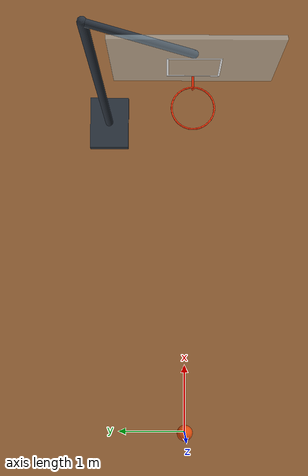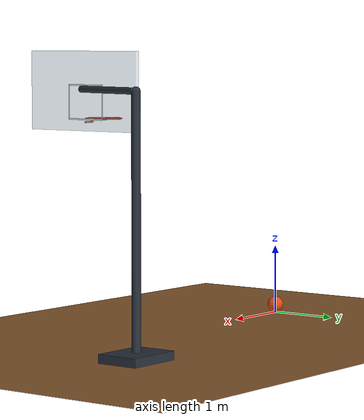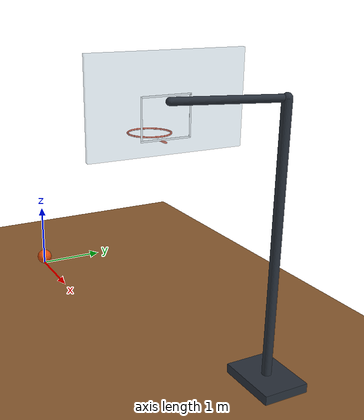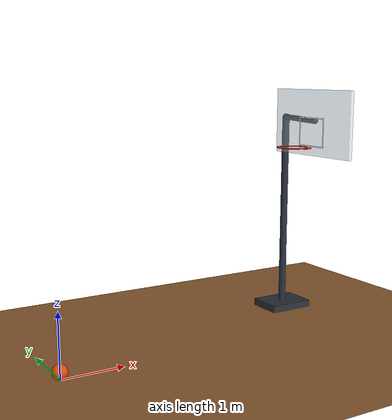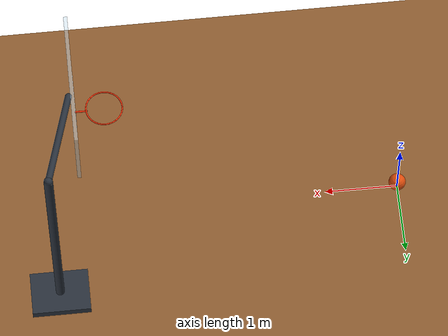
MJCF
<mujoco model="basketball_shot">
  <compiler angle="radian"/>
  <option timestep="0.002" integrator="RK4" gravity="0 0 -9.81"/>

  <statistic center="2.2 0 1.8" extent="5.5"/>

  <visual>
    <headlight ambient="0.35 0.35 0.35" diffuse="0.65 0.65 0.65" specular="0.2 0.2 0.2"/>
    <rgba haze="0.85 0.9 0.95 1"/>
  </visual>

  <asset>
    <material name="court_material" rgba="0.55 0.36 0.19 1" specular="0.15" shininess="0.2"/>
    <material name="ball_material" rgba="0.88 0.30 0.045 1" specular="0.1" shininess="0.1"/>
    <material name="rim_material" rgba="0.95 0.19 0.025 1" specular="0.45" shininess="0.5"/>
    <material name="support_material" rgba="0.16 0.19 0.23 1" specular="0.25" shininess="0.3"/>
    <material name="board_material" rgba="0.78 0.88 0.94 0.45" specular="0.5" shininess="0.7"/>
    <material name="marking_material" rgba="1 1 1 1"/>
  </asset>

  <worldbody>
    <light name="key_light" pos="1 -3 7" dir="0.25 0.25 -1" directional="true" diffuse="0.8 0.8 0.8"/>
    <light name="fill_light" pos="5 4 6" dir="-0.3 -0.4 -1" directional="true" diffuse="0.4 0.4 0.4"/>
    <camera name="overview" pos="2 -8 4.5" xyaxes="1 0 0 0 0.3 0.953939" fovy="45"/>

    <geom name="floor" type="plane" pos="0 0 0" size="10 7 0.1" material="court_material" friction="0.8 0.01 0.001"/>

    <!-- Size-7 basketball: 0.754 m circumference and 0.624 kg mass. -->
    <body name="ball" pos="0 0 0.12">
      <freejoint name="ball_free"/>
      <geom name="ball" type="sphere" size="0.12" mass="0.624" material="ball_material" friction="0.7 0.01 0.001" condim="6"/>
    </body>

    <!-- Rim center is exactly 4 m horizontally from the launch point. -->
    <!-- Capsule centerline radius 0.2381 m; tube radius 0.0095 m. -->
    <body name="hoop" pos="4 0 3.05">
      <geom name="rim_00" type="capsule" fromto="0.238100 0 0 0.233525 0.046451 0" size="0.0095" material="rim_material"/>
      <geom name="rim_01" type="capsule" fromto="0.233525 0.046451 0 0.219976 0.091117 0" size="0.0095" material="rim_material"/>
      <geom name="rim_02" type="capsule" fromto="0.219976 0.091117 0 0.197973 0.132281 0" size="0.0095" material="rim_material"/>
      <geom name="rim_03" type="capsule" fromto="0.197973 0.132281 0 0.168362 0.168362 0" size="0.0095" material="rim_material"/>
      <geom name="rim_04" type="capsule" fromto="0.168362 0.168362 0 0.132281 0.197973 0" size="0.0095" material="rim_material"/>
      <geom name="rim_05" type="capsule" fromto="0.132281 0.197973 0 0.091117 0.219976 0" size="0.0095" material="rim_material"/>
      <geom name="rim_06" type="capsule" fromto="0.091117 0.219976 0 0.046451 0.233525 0" size="0.0095" material="rim_material"/>
      <geom name="rim_07" type="capsule" fromto="0.046451 0.233525 0 0 0.238100 0" size="0.0095" material="rim_material"/>
      <geom name="rim_08" type="capsule" fromto="0 0.238100 0 -0.046451 0.233525 0" size="0.0095" material="rim_material"/>
      <geom name="rim_09" type="capsule" fromto="-0.046451 0.233525 0 -0.091117 0.219976 0" size="0.0095" material="rim_material"/>
      <geom name="rim_10" type="capsule" fromto="-0.091117 0.219976 0 -0.132281 0.197973 0" size="0.0095" material="rim_material"/>
      <geom name="rim_11" type="capsule" fromto="-0.132281 0.197973 0 -0.168362 0.168362 0" size="0.0095" material="rim_material"/>
      <geom name="rim_12" type="capsule" fromto="-0.168362 0.168362 0 -0.197973 0.132281 0" size="0.0095" material="rim_material"/>
      <geom name="rim_13" type="capsule" fromto="-0.197973 0.132281 0 -0.219976 0.091117 0" size="0.0095" material="rim_material"/>
      <geom name="rim_14" type="capsule" fromto="-0.219976 0.091117 0 -0.233525 0.046451 0" size="0.0095" material="rim_material"/>
      <geom name="rim_15" type="capsule" fromto="-0.233525 0.046451 0 -0.238100 0 0" size="0.0095" material="rim_material"/>
      <geom name="rim_16" type="capsule" fromto="-0.238100 0 0 -0.233525 -0.046451 0" size="0.0095" material="rim_material"/>
      <geom name="rim_17" type="capsule" fromto="-0.233525 -0.046451 0 -0.219976 -0.091117 0" size="0.0095" material="rim_material"/>
      <geom name="rim_18" type="capsule" fromto="-0.219976 -0.091117 0 -0.197973 -0.132281 0" size="0.0095" material="rim_material"/>
      <geom name="rim_19" type="capsule" fromto="-0.197973 -0.132281 0 -0.168362 -0.168362 0" size="0.0095" material="rim_material"/>
      <geom name="rim_20" type="capsule" fromto="-0.168362 -0.168362 0 -0.132281 -0.197973 0" size="0.0095" material="rim_material"/>
      <geom name="rim_21" type="capsule" fromto="-0.132281 -0.197973 0 -0.091117 -0.219976 0" size="0.0095" material="rim_material"/>
      <geom name="rim_22" type="capsule" fromto="-0.091117 -0.219976 0 -0.046451 -0.233525 0" size="0.0095" material="rim_material"/>
      <geom name="rim_23" type="capsule" fromto="-0.046451 -0.233525 0 0 -0.238100 0" size="0.0095" material="rim_material"/>
      <geom name="rim_24" type="capsule" fromto="0 -0.238100 0 0.046451 -0.233525 0" size="0.0095" material="rim_material"/>
      <geom name="rim_25" type="capsule" fromto="0.046451 -0.233525 0 0.091117 -0.219976 0" size="0.0095" material="rim_material"/>
      <geom name="rim_26" type="capsule" fromto="0.091117 -0.219976 0 0.132281 -0.197973 0" size="0.0095" material="rim_material"/>
      <geom name="rim_27" type="capsule" fromto="0.132281 -0.197973 0 0.168362 -0.168362 0" size="0.0095" material="rim_material"/>
      <geom name="rim_28" type="capsule" fromto="0.168362 -0.168362 0 0.197973 -0.132281 0" size="0.0095" material="rim_material"/>
      <geom name="rim_29" type="capsule" fromto="0.197973 -0.132281 0 0.219976 -0.091117 0" size="0.0095" material="rim_material"/>
      <geom name="rim_30" type="capsule" fromto="0.219976 -0.091117 0 0.233525 -0.046451 0" size="0.0095" material="rim_material"/>
      <geom name="rim_31" type="capsule" fromto="0.233525 -0.046451 0 0.238100 0 0" size="0.0095" material="rim_material"/>
      <geom name="hoop_mount" type="capsule" fromto="0.23 0 -0.035 0.375 0 -0.035" size="0.012" material="rim_material"/>
    </body>

    <!-- Backboard front face is 0.375 m behind the rim center. -->
    <body name="backboard" pos="4.4 0 3.425">
      <geom name="backboard_panel" type="box" size="0.025 0.9 0.525" material="board_material"/>
      <geom name="target_top" type="box" pos="-0.026 0 0.075" size="0.001 0.295 0.01" material="marking_material" contype="0" conaffinity="0"/>
      <geom name="target_bottom" type="box" pos="-0.026 0 -0.375" size="0.001 0.295 0.01" material="marking_material" contype="0" conaffinity="0"/>
      <geom name="target_left" type="box" pos="-0.026 -0.285 -0.15" size="0.001 0.01 0.225" material="marking_material" contype="0" conaffinity="0"/>
      <geom name="target_right" type="box" pos="-0.026 0.285 -0.15" size="0.001 0.01 0.225" material="marking_material" contype="0" conaffinity="0"/>
    </body>

    <!-- Offset support leaves the ball's path below the hoop unobstructed. -->
    <body name="support" pos="4.8 1.2 0">
      <geom name="support_base" type="box" pos="0 0 0.06" size="0.4 0.3 0.06" material="support_material"/>
      <geom name="support_post" type="capsule" fromto="0 0 0.12 0 0 3.45" size="0.06" material="support_material"/>
      <geom name="support_arm" type="capsule" fromto="0 0 3.45 -0.35 -1.2 3.45" size="0.045" material="support_material"/>
    </body>
  </worldbody>

  <!-- Ballistic target: x(1.3) = 4, z(1.3) = 3.05, vz(1.3) = -4.122654. -->
  <keyframe>
    <key name="start" time="0" qpos="0 0 0.12 1 0 0 0" qvel="3.076923076923 0 8.630346153846 0 0 0"/>
  </keyframe>
</mujoco>
